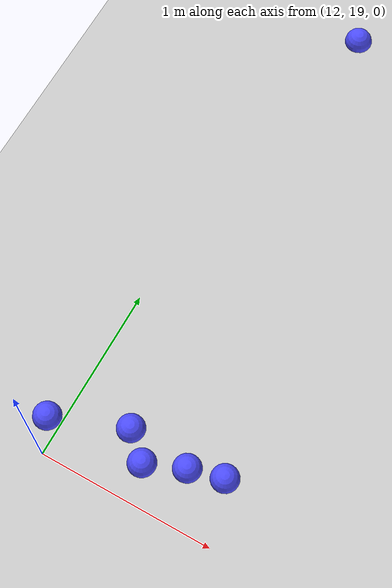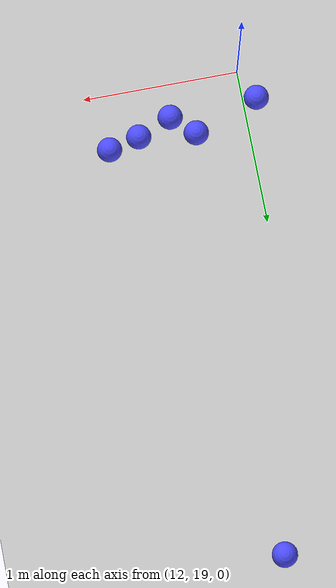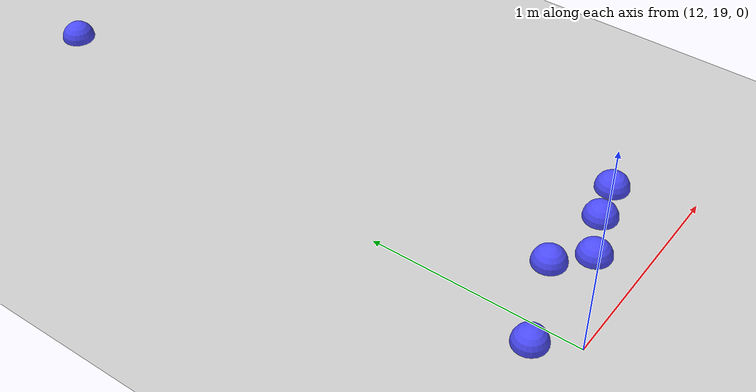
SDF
<sdf version="1.7">
 <world name="default">
  <model name="ground_plane">
   <static>1</static>
   <link name="link">
    <collision name="collision">
     <geometry><plane><normal>0 0 1</normal><size>100 100</size></plane></geometry>
     <surface>
      <contact><collide_bitmask>65535</collide_bitmask></contact>
      <friction><ode><mu>100</mu><mu2>50</mu2></ode></friction>
     </surface>
    </collision>
    <visual name="visual">
     <cast_shadows>0</cast_shadows>
     <geometry><plane><normal>0 0 1</normal><size>100 100</size></plane></geometry>
     <material>
      <script><uri>file://media/materials/scripts/gazebo.material</uri><name>Gazebo/Grey</name></script>
     </material>
    </visual>
   </link>
  </model>
  <model name="seed_blue_76">
   <link name="link">
    <inertial>
     <mass>1</mass>
     <inertia><ixx>0.1</ixx><ixy>0</ixy><ixz>0</ixz><iyy>0.1</iyy><iyz>0</iyz><izz>0.1</izz></inertia>
    </inertial>
    <visual name="visual">
     <geometry><sphere><radius>0.08</radius></sphere></geometry>
     <material>
      <script><name>Gazebo/Grey</name><uri>file://media/materials/scripts/gazebo.material</uri></script>
      <shader type="pixel"><normal_map>__default__</normal_map></shader>
      <ambient>0.3 0.3 1 1</ambient>
      <diffuse>0.7 0.7 0.7 1</diffuse>
      <specular>0.01 0.01 0.01 1</specular>
      <emissive>0 0 0 1</emissive>
     </material>
    </visual>
    <collision name="collision">
     <geometry><sphere><radius>0.0005</radius></sphere></geometry>
     <surface>
      <friction>
       <ode><mu>1</mu><mu2>1</mu2><fdir1>0 0 0</fdir1><slip1>0</slip1><slip2>0</slip2></ode>
       <torsional>
        <coefficient>1</coefficient>
        <patch_radius>0</patch_radius>
        <surface_radius>0</surface_radius>
        <use_patch_radius>1</use_patch_radius>
        <ode><slip>0</slip></ode>
       </torsional>
      </friction>
      <bounce><restitution_coefficient>0</restitution_coefficient><threshold>1e+06</threshold></bounce>
      <contact>
       <collide_without_contact>0</collide_without_contact>
       <collide_without_contact_bitmask>1</collide_without_contact_bitmask>
       <collide_bitmask>1</collide_bitmask>
       <ode>
        <soft_cfm>0</soft_cfm>
        <soft_erp>0.2</soft_erp>
        <kp>1e+13</kp>
        <kd>1</kd>
        <max_vel>0.01</max_vel>
        <min_depth>0</min_depth>
       </ode>
       <bullet>
        <split_impulse>1</split_impulse>
        <split_impulse_penetration_threshold>-0.01</split_impulse_penetration_threshold>
        <soft_cfm>0</soft_cfm>
        <soft_erp>0.2</soft_erp>
        <kp>1e+13</kp>
        <kd>1</kd>
       </bullet>
      </contact>
     </surface>
    </collision>
   </link>
   <static>0</static>
   <pose>12.3028 22.0685 0.0005 0 -0 0</pose>
  </model>
  <model name="seed_blue_104">
   <link name="link">
    <inertial>
     <mass>1</mass>
     <inertia><ixx>0.1</ixx><ixy>0</ixy><ixz>0</ixz><iyy>0.1</iyy><iyz>0</iyz><izz>0.1</izz></inertia>
    </inertial>
    <visual name="visual">
     <geometry><sphere><radius>0.08</radius></sphere></geometry>
     <material>
      <script><name>Gazebo/Grey</name><uri>file://media/materials/scripts/gazebo.material</uri></script>
      <shader type="pixel"><normal_map>__default__</normal_map></shader>
      <ambient>0.3 0.3 1 1</ambient>
      <diffuse>0.7 0.7 0.7 1</diffuse>
      <specular>0.01 0.01 0.01 1</specular>
      <emissive>0 0 0 1</emissive>
     </material>
    </visual>
    <collision name="collision">
     <geometry><sphere><radius>0.0005</radius></sphere></geometry>
     <surface>
      <friction>
       <ode><mu>1</mu><mu2>1</mu2><fdir1>0 0 0</fdir1><slip1>0</slip1><slip2>0</slip2></ode>
       <torsional>
        <coefficient>1</coefficient>
        <patch_radius>0</patch_radius>
        <surface_radius>0</surface_radius>
        <use_patch_radius>1</use_patch_radius>
        <ode><slip>0</slip></ode>
       </torsional>
      </friction>
      <bounce><restitution_coefficient>0</restitution_coefficient><threshold>1e+06</threshold></bounce>
      <contact>
       <collide_without_contact>0</collide_without_contact>
       <collide_without_contact_bitmask>1</collide_without_contact_bitmask>
       <collide_bitmask>1</collide_bitmask>
       <ode>
        <soft_cfm>0</soft_cfm>
        <soft_erp>0.2</soft_erp>
        <kp>1e+13</kp>
        <kd>1</kd>
        <max_vel>0.01</max_vel>
        <min_depth>0</min_depth>
       </ode>
       <bullet>
        <split_impulse>1</split_impulse>
        <split_impulse_penetration_threshold>-0.01</split_impulse_penetration_threshold>
        <soft_cfm>0</soft_cfm>
        <soft_erp>0.2</soft_erp>
        <kp>1e+13</kp>
        <kd>1</kd>
       </bullet>
      </contact>
     </surface>
    </collision>
   </link>
   <static>0</static>
   <pose>11.9119 19.1861 0.0005 0 -0 0</pose>
  </model>
  <model name="seed_blue_105">
   <link name="link">
    <inertial>
     <mass>1</mass>
     <inertia><ixx>0.1</ixx><ixy>0</ixy><ixz>0</ixz><iyy>0.1</iyy><iyz>0</iyz><izz>0.1</izz></inertia>
    </inertial>
    <visual name="visual">
     <geometry><sphere><radius>0.08</radius></sphere></geometry>
     <material>
      <script><name>Gazebo/Grey</name><uri>file://media/materials/scripts/gazebo.material</uri></script>
      <shader type="pixel"><normal_map>__default__</normal_map></shader>
      <ambient>0.3 0.3 1 1</ambient>
      <diffuse>0.7 0.7 0.7 1</diffuse>
      <specular>0.01 0.01 0.01 1</specular>
      <emissive>0 0 0 1</emissive>
     </material>
    </visual>
    <collision name="collision">
     <geometry><sphere><radius>0.0005</radius></sphere></geometry>
     <surface>
      <friction>
       <ode><mu>1</mu><mu2>1</mu2><fdir1>0 0 0</fdir1><slip1>0</slip1><slip2>0</slip2></ode>
       <torsional>
        <coefficient>1</coefficient>
        <patch_radius>0</patch_radius>
        <surface_radius>0</surface_radius>
        <use_patch_radius>1</use_patch_radius>
        <ode><slip>0</slip></ode>
       </torsional>
      </friction>
      <bounce><restitution_coefficient>0</restitution_coefficient><threshold>1e+06</threshold></bounce>
      <contact>
       <collide_without_contact>0</collide_without_contact>
       <collide_without_contact_bitmask>1</collide_without_contact_bitmask>
       <collide_bitmask>1</collide_bitmask>
       <ode>
        <soft_cfm>0</soft_cfm>
        <soft_erp>0.2</soft_erp>
        <kp>1e+13</kp>
        <kd>1</kd>
        <max_vel>0.01</max_vel>
        <min_depth>0</min_depth>
       </ode>
       <bullet>
        <split_impulse>1</split_impulse>
        <split_impulse_penetration_threshold>-0.01</split_impulse_penetration_threshold>
        <soft_cfm>0</soft_cfm>
        <soft_erp>0.2</soft_erp>
        <kp>1e+13</kp>
        <kd>1</kd>
       </bullet>
      </contact>
     </surface>
    </collision>
   </link>
   <static>0</static>
   <pose>12.4763 19.213 0.0005 0 -0 0</pose>
  </model>
  <model name="seed_blue_106">
   <link name="link">
    <inertial>
     <mass>1</mass>
     <inertia><ixx>0.1</ixx><ixy>0</ixy><ixz>0</ixz><iyy>0.1</iyy><iyz>0</iyz><izz>0.1</izz></inertia>
    </inertial>
    <visual name="visual">
     <geometry><sphere><radius>0.08</radius></sphere></geometry>
     <material>
      <script><name>Gazebo/Grey</name><uri>file://media/materials/scripts/gazebo.material</uri></script>
      <shader type="pixel"><normal_map>__default__</normal_map></shader>
      <ambient>0.3 0.3 1 1</ambient>
      <diffuse>0.7 0.7 0.7 1</diffuse>
      <specular>0.01 0.01 0.01 1</specular>
      <emissive>0 0 0 1</emissive>
     </material>
    </visual>
    <collision name="collision">
     <geometry><sphere><radius>0.0005</radius></sphere></geometry>
     <surface>
      <friction>
       <ode><mu>1</mu><mu2>1</mu2><fdir1>0 0 0</fdir1><slip1>0</slip1><slip2>0</slip2></ode>
       <torsional>
        <coefficient>1</coefficient>
        <patch_radius>0</patch_radius>
        <surface_radius>0</surface_radius>
        <use_patch_radius>1</use_patch_radius>
        <ode><slip>0</slip></ode>
       </torsional>
      </friction>
      <bounce><restitution_coefficient>0</restitution_coefficient><threshold>1e+06</threshold></bounce>
      <contact>
       <collide_without_contact>0</collide_without_contact>
       <collide_without_contact_bitmask>1</collide_without_contact_bitmask>
       <collide_bitmask>1</collide_bitmask>
       <ode>
        <soft_cfm>0</soft_cfm>
        <soft_erp>0.2</soft_erp>
        <kp>1e+13</kp>
        <kd>1</kd>
        <max_vel>0.01</max_vel>
        <min_depth>0</min_depth>
       </ode>
       <bullet>
        <split_impulse>1</split_impulse>
        <split_impulse_penetration_threshold>-0.01</split_impulse_penetration_threshold>
        <soft_cfm>0</soft_cfm>
        <soft_erp>0.2</soft_erp>
        <kp>1e+13</kp>
        <kd>1</kd>
       </bullet>
      </contact>
     </surface>
    </collision>
   </link>
   <static>0</static>
   <pose>12.8936 19.3521 0.0005 0 -0 0</pose>
  </model>
  <model name="seed_blue_108">
   <link name="link">
    <inertial>
     <mass>1</mass>
     <inertia><ixx>0.1</ixx><ixy>0</ixy><ixz>0</ixz><iyy>0.1</iyy><iyz>0</iyz><izz>0.1</izz></inertia>
    </inertial>
    <visual name="visual">
     <geometry><sphere><radius>0.08</radius></sphere></geometry>
     <material>
      <script><name>Gazebo/Grey</name><uri>file://media/materials/scripts/gazebo.material</uri></script>
      <shader type="pixel"><normal_map>__default__</normal_map></shader>
      <ambient>0.3 0.3 1 1</ambient>
      <diffuse>0.7 0.7 0.7 1</diffuse>
      <specular>0.01 0.01 0.01 1</specular>
      <emissive>0 0 0 1</emissive>
     </material>
    </visual>
    <collision name="collision">
     <geometry><sphere><radius>0.0005</radius></sphere></geometry>
     <surface>
      <friction>
       <ode><mu>1</mu><mu2>1</mu2><fdir1>0 0 0</fdir1><slip1>0</slip1><slip2>0</slip2></ode>
       <torsional>
        <coefficient>1</coefficient>
        <patch_radius>0</patch_radius>
        <surface_radius>0</surface_radius>
        <use_patch_radius>1</use_patch_radius>
        <ode><slip>0</slip></ode>
       </torsional>
      </friction>
      <bounce><restitution_coefficient>0</restitution_coefficient><threshold>1e+06</threshold></bounce>
      <contact>
       <collide_without_contact>0</collide_without_contact>
       <collide_without_contact_bitmask>1</collide_without_contact_bitmask>
       <collide_bitmask>1</collide_bitmask>
       <ode>
        <soft_cfm>0</soft_cfm>
        <soft_erp>0.2</soft_erp>
        <kp>1e+13</kp>
        <kd>1</kd>
        <max_vel>0.01</max_vel>
        <min_depth>0</min_depth>
       </ode>
       <bullet>
        <split_impulse>1</split_impulse>
        <split_impulse_penetration_threshold>-0.01</split_impulse_penetration_threshold>
        <soft_cfm>0</soft_cfm>
        <soft_erp>0.2</soft_erp>
        <kp>1e+13</kp>
        <kd>1</kd>
       </bullet>
      </contact>
     </surface>
    </collision>
   </link>
   <static>0</static>
   <pose>12.6963 19.3034 0.0005 0 -0 0</pose>
  </model>
  <model name="seed_blue_109">
   <link name="link">
    <inertial>
     <mass>1</mass>
     <inertia><ixx>0.1</ixx><ixy>0</ixy><ixz>0</ixz><iyy>0.1</iyy><iyz>0</iyz><izz>0.1</izz></inertia>
    </inertial>
    <visual name="visual">
     <geometry><sphere><radius>0.08</radius></sphere></geometry>
     <material>
      <script><name>Gazebo/Grey</name><uri>file://media/materials/scripts/gazebo.material</uri></script>
      <shader type="pixel"><normal_map>__default__</normal_map></shader>
      <ambient>0.3 0.3 1 1</ambient>
      <diffuse>0.7 0.7 0.7 1</diffuse>
      <specular>0.01 0.01 0.01 1</specular>
      <emissive>0 0 0 1</emissive>
     </material>
    </visual>
    <collision name="collision">
     <geometry><sphere><radius>0.0005</radius></sphere></geometry>
     <surface>
      <friction>
       <ode><mu>1</mu><mu2>1</mu2><fdir1>0 0 0</fdir1><slip1>0</slip1><slip2>0</slip2></ode>
       <torsional>
        <coefficient>1</coefficient>
        <patch_radius>0</patch_radius>
        <surface_radius>0</surface_radius>
        <use_patch_radius>1</use_patch_radius>
        <ode><slip>0</slip></ode>
       </torsional>
      </friction>
      <bounce><restitution_coefficient>0</restitution_coefficient><threshold>1e+06</threshold></bounce>
      <contact>
       <collide_without_contact>0</collide_without_contact>
       <collide_without_contact_bitmask>1</collide_without_contact_bitmask>
       <collide_bitmask>1</collide_bitmask>
       <ode>
        <soft_cfm>0</soft_cfm>
        <soft_erp>0.2</soft_erp>
        <kp>1e+13</kp>
        <kd>1</kd>
        <max_vel>0.01</max_vel>
        <min_depth>0</min_depth>
       </ode>
       <bullet>
        <split_impulse>1</split_impulse>
        <split_impulse_penetration_threshold>-0.01</split_impulse_penetration_threshold>
        <soft_cfm>0</soft_cfm>
        <soft_erp>0.2</soft_erp>
        <kp>1e+13</kp>
        <kd>1</kd>
       </bullet>
      </contact>
     </surface>
    </collision>
   </link>
   <static>0</static>
   <pose>12.3322 19.3445 0.0005 0 -0 0</pose>
  </model>
 </world>
</sdf>
